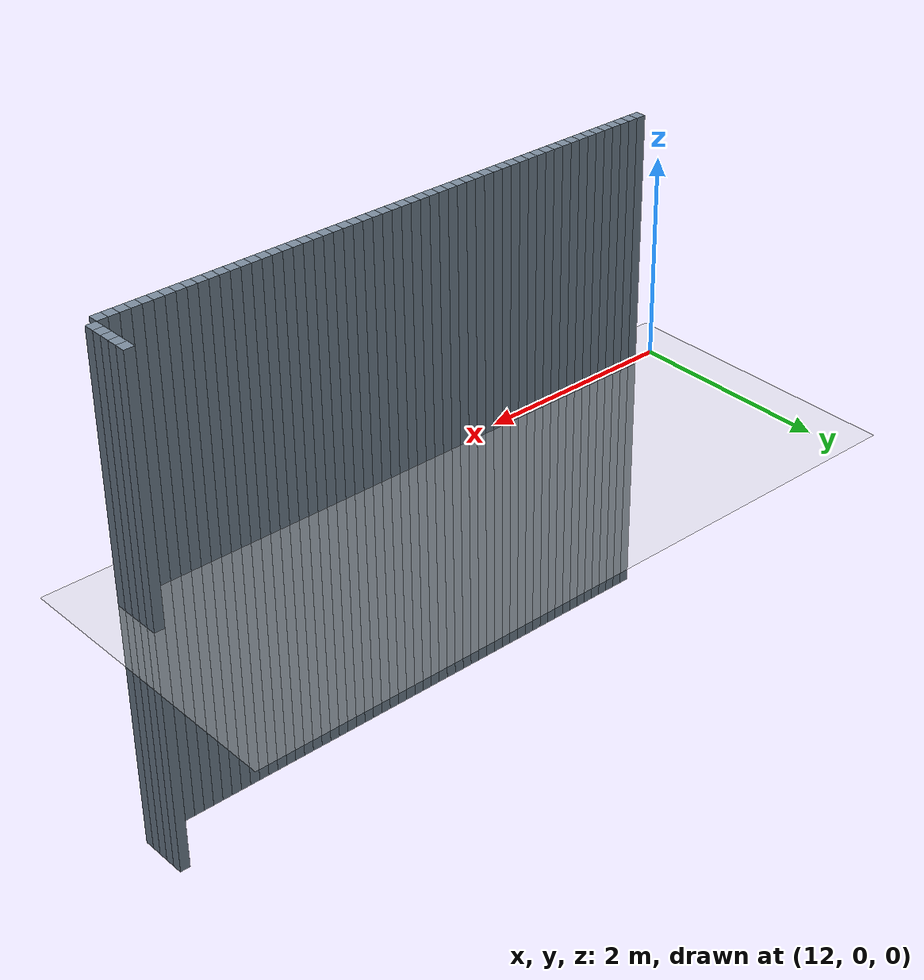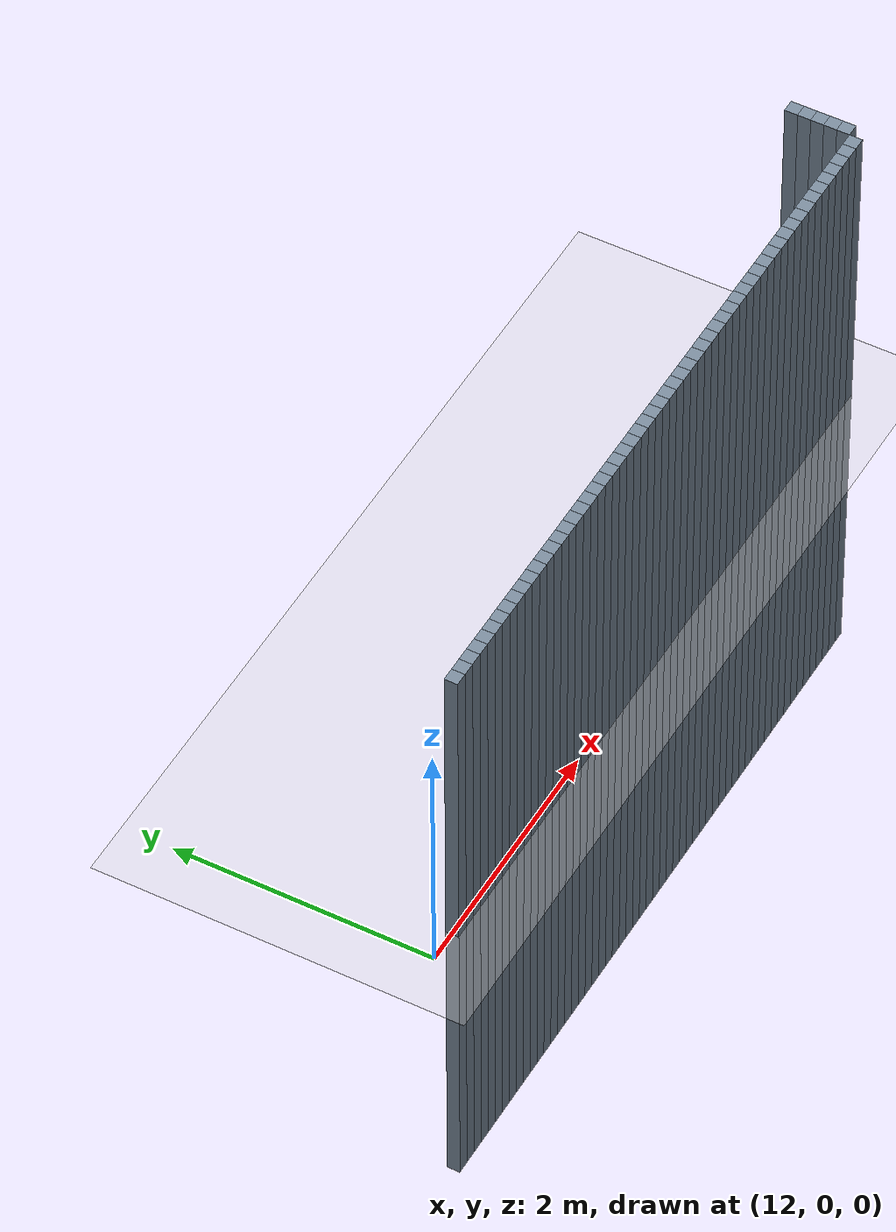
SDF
<sdf version="1.6">
 <world name="default">
  <model name="ground_plane">
   <static>1</static>
   <link name="link">
    <collision name="collision">
     <geometry><plane><normal>0 0 1</normal><size>100 100</size></plane></geometry>
     <surface><friction><ode><mu>100</mu><mu2>50</mu2></ode></friction></surface>
    </collision>
    <visual name="visual">
     <cast_shadows>0</cast_shadows>
     <geometry><plane><normal>0 0 1</normal><size>100 100</size></plane></geometry>
     <material>
      <script><uri>file://media/materials/scripts/gazebo.material</uri><name>Gazebo/Grey</name></script>
     </material>
    </visual>
   </link>
  </model>
  <model name="unit_cylinder_783">
   <static>1</static>
   <pose>12.3 0 0 0 -0 0</pose>
   <link name="link">
    <inertial>
     <mass>1</mass>
     <inertia><ixx>0.145833</ixx><ixy>0</ixy><ixz>0</ixz><iyy>0.145833</iyy><iyz>0</iyz><izz>0.125</izz></inertia>
    </inertial>
    <collision name="collision"><geometry><box><size>0.1 0.1 5</size></box></geometry></collision>
    <visual name="visual">
     <geometry><box><size>0.1 0.1 5</size></box></geometry>
     <material><ambient>0.466667 0.533333 0.6 1</ambient><diffuse>0.466667 0.533333 0.6 1</diffuse></material>
     <material>
      <script><name>Gazebo/Grey</name><uri>file://media/materials/scripts/gazebo.material</uri></script>
     </material>
    </visual>
   </link>
  </model>
  <model name="unit_cylinder_785">
   <static>1</static>
   <pose>12.4 0 0 0 -0 0</pose>
   <link name="link">
    <inertial>
     <mass>1</mass>
     <inertia><ixx>0.145833</ixx><ixy>0</ixy><ixz>0</ixz><iyy>0.145833</iyy><iyz>0</iyz><izz>0.125</izz></inertia>
    </inertial>
    <collision name="collision"><geometry><box><size>0.1 0.1 5</size></box></geometry></collision>
    <visual name="visual">
     <geometry><box><size>0.1 0.1 5</size></box></geometry>
     <material><ambient>0.466667 0.533333 0.6 1</ambient><diffuse>0.466667 0.533333 0.6 1</diffuse></material>
     <material>
      <script><name>Gazebo/Grey</name><uri>file://media/materials/scripts/gazebo.material</uri></script>
     </material>
    </visual>
   </link>
  </model>
  <model name="unit_cylinder_787">
   <static>1</static>
   <pose>12.5 0 0 0 -0 0</pose>
   <link name="link">
    <inertial>
     <mass>1</mass>
     <inertia><ixx>0.145833</ixx><ixy>0</ixy><ixz>0</ixz><iyy>0.145833</iyy><iyz>0</iyz><izz>0.125</izz></inertia>
    </inertial>
    <collision name="collision"><geometry><box><size>0.1 0.1 5</size></box></geometry></collision>
    <visual name="visual">
     <geometry><box><size>0.1 0.1 5</size></box></geometry>
     <material><ambient>0.466667 0.533333 0.6 1</ambient><diffuse>0.466667 0.533333 0.6 1</diffuse></material>
     <material>
      <script><name>Gazebo/Grey</name><uri>file://media/materials/scripts/gazebo.material</uri></script>
     </material>
    </visual>
   </link>
  </model>
  <model name="unit_cylinder_789">
   <static>1</static>
   <pose>12.6 0 0 0 -0 0</pose>
   <link name="link">
    <inertial>
     <mass>1</mass>
     <inertia><ixx>0.145833</ixx><ixy>0</ixy><ixz>0</ixz><iyy>0.145833</iyy><iyz>0</iyz><izz>0.125</izz></inertia>
    </inertial>
    <collision name="collision"><geometry><box><size>0.1 0.1 5</size></box></geometry></collision>
    <visual name="visual">
     <geometry><box><size>0.1 0.1 5</size></box></geometry>
     <material><ambient>0.466667 0.533333 0.6 1</ambient><diffuse>0.466667 0.533333 0.6 1</diffuse></material>
     <material>
      <script><name>Gazebo/Grey</name><uri>file://media/materials/scripts/gazebo.material</uri></script>
     </material>
    </visual>
   </link>
  </model>
  <model name="unit_cylinder_791">
   <static>1</static>
   <pose>12.7 0 0 0 -0 0</pose>
   <link name="link">
    <inertial>
     <mass>1</mass>
     <inertia><ixx>0.145833</ixx><ixy>0</ixy><ixz>0</ixz><iyy>0.145833</iyy><iyz>0</iyz><izz>0.125</izz></inertia>
    </inertial>
    <collision name="collision"><geometry><box><size>0.1 0.1 5</size></box></geometry></collision>
    <visual name="visual">
     <geometry><box><size>0.1 0.1 5</size></box></geometry>
     <material><ambient>0.466667 0.533333 0.6 1</ambient><diffuse>0.466667 0.533333 0.6 1</diffuse></material>
     <material>
      <script><name>Gazebo/Grey</name><uri>file://media/materials/scripts/gazebo.material</uri></script>
     </material>
    </visual>
   </link>
  </model>
  <model name="unit_cylinder_793">
   <static>1</static>
   <pose>12.8 0 0 0 -0 0</pose>
   <link name="link">
    <inertial>
     <mass>1</mass>
     <inertia><ixx>0.145833</ixx><ixy>0</ixy><ixz>0</ixz><iyy>0.145833</iyy><iyz>0</iyz><izz>0.125</izz></inertia>
    </inertial>
    <collision name="collision"><geometry><box><size>0.1 0.1 5</size></box></geometry></collision>
    <visual name="visual">
     <geometry><box><size>0.1 0.1 5</size></box></geometry>
     <material><ambient>0.466667 0.533333 0.6 1</ambient><diffuse>0.466667 0.533333 0.6 1</diffuse></material>
     <material>
      <script><name>Gazebo/Grey</name><uri>file://media/materials/scripts/gazebo.material</uri></script>
     </material>
    </visual>
   </link>
  </model>
  <model name="unit_cylinder_795">
   <static>1</static>
   <pose>12.9 0 0 0 -0 0</pose>
   <link name="link">
    <inertial>
     <mass>1</mass>
     <inertia><ixx>0.145833</ixx><ixy>0</ixy><ixz>0</ixz><iyy>0.145833</iyy><iyz>0</iyz><izz>0.125</izz></inertia>
    </inertial>
    <collision name="collision"><geometry><box><size>0.1 0.1 5</size></box></geometry></collision>
    <visual name="visual">
     <geometry><box><size>0.1 0.1 5</size></box></geometry>
     <material><ambient>0.466667 0.533333 0.6 1</ambient><diffuse>0.466667 0.533333 0.6 1</diffuse></material>
     <material>
      <script><name>Gazebo/Grey</name><uri>file://media/materials/scripts/gazebo.material</uri></script>
     </material>
    </visual>
   </link>
  </model>
  <model name="unit_cylinder_797">
   <static>1</static>
   <pose>13 0 0 0 -0 0</pose>
   <link name="link">
    <inertial>
     <mass>1</mass>
     <inertia><ixx>0.145833</ixx><ixy>0</ixy><ixz>0</ixz><iyy>0.145833</iyy><iyz>0</iyz><izz>0.125</izz></inertia>
    </inertial>
    <collision name="collision"><geometry><box><size>0.1 0.1 5</size></box></geometry></collision>
    <visual name="visual">
     <geometry><box><size>0.1 0.1 5</size></box></geometry>
     <material><ambient>0.466667 0.533333 0.6 1</ambient><diffuse>0.466667 0.533333 0.6 1</diffuse></material>
     <material>
      <script><name>Gazebo/Grey</name><uri>file://media/materials/scripts/gazebo.material</uri></script>
     </material>
    </visual>
   </link>
  </model>
  <model name="unit_cylinder_799">
   <static>1</static>
   <pose>13.1 0 0 0 -0 0</pose>
   <link name="link">
    <inertial>
     <mass>1</mass>
     <inertia><ixx>0.145833</ixx><ixy>0</ixy><ixz>0</ixz><iyy>0.145833</iyy><iyz>0</iyz><izz>0.125</izz></inertia>
    </inertial>
    <collision name="collision"><geometry><box><size>0.1 0.1 5</size></box></geometry></collision>
    <visual name="visual">
     <geometry><box><size>0.1 0.1 5</size></box></geometry>
     <material><ambient>0.466667 0.533333 0.6 1</ambient><diffuse>0.466667 0.533333 0.6 1</diffuse></material>
     <material>
      <script><name>Gazebo/Grey</name><uri>file://media/materials/scripts/gazebo.material</uri></script>
     </material>
    </visual>
   </link>
  </model>
  <model name="unit_cylinder_801">
   <static>1</static>
   <pose>13.2 0 0 0 -0 0</pose>
   <link name="link">
    <inertial>
     <mass>1</mass>
     <inertia><ixx>0.145833</ixx><ixy>0</ixy><ixz>0</ixz><iyy>0.145833</iyy><iyz>0</iyz><izz>0.125</izz></inertia>
    </inertial>
    <collision name="collision"><geometry><box><size>0.1 0.1 5</size></box></geometry></collision>
    <visual name="visual">
     <geometry><box><size>0.1 0.1 5</size></box></geometry>
     <material><ambient>0.466667 0.533333 0.6 1</ambient><diffuse>0.466667 0.533333 0.6 1</diffuse></material>
     <material>
      <script><name>Gazebo/Grey</name><uri>file://media/materials/scripts/gazebo.material</uri></script>
     </material>
    </visual>
   </link>
  </model>
  <model name="unit_cylinder_803">
   <static>1</static>
   <pose>13.3 0 0 0 -0 0</pose>
   <link name="link">
    <inertial>
     <mass>1</mass>
     <inertia><ixx>0.145833</ixx><ixy>0</ixy><ixz>0</ixz><iyy>0.145833</iyy><iyz>0</iyz><izz>0.125</izz></inertia>
    </inertial>
    <collision name="collision"><geometry><box><size>0.1 0.1 5</size></box></geometry></collision>
    <visual name="visual">
     <geometry><box><size>0.1 0.1 5</size></box></geometry>
     <material><ambient>0.466667 0.533333 0.6 1</ambient><diffuse>0.466667 0.533333 0.6 1</diffuse></material>
     <material>
      <script><name>Gazebo/Grey</name><uri>file://media/materials/scripts/gazebo.material</uri></script>
     </material>
    </visual>
   </link>
  </model>
  <model name="unit_cylinder_805">
   <static>1</static>
   <pose>13.4 0 0 0 -0 0</pose>
   <link name="link">
    <inertial>
     <mass>1</mass>
     <inertia><ixx>0.145833</ixx><ixy>0</ixy><ixz>0</ixz><iyy>0.145833</iyy><iyz>0</iyz><izz>0.125</izz></inertia>
    </inertial>
    <collision name="collision"><geometry><box><size>0.1 0.1 5</size></box></geometry></collision>
    <visual name="visual">
     <geometry><box><size>0.1 0.1 5</size></box></geometry>
     <material><ambient>0.466667 0.533333 0.6 1</ambient><diffuse>0.466667 0.533333 0.6 1</diffuse></material>
     <material>
      <script><name>Gazebo/Grey</name><uri>file://media/materials/scripts/gazebo.material</uri></script>
     </material>
    </visual>
   </link>
  </model>
  <model name="unit_cylinder_807">
   <static>1</static>
   <pose>13.5 0 0 0 -0 0</pose>
   <link name="link">
    <inertial>
     <mass>1</mass>
     <inertia><ixx>0.145833</ixx><ixy>0</ixy><ixz>0</ixz><iyy>0.145833</iyy><iyz>0</iyz><izz>0.125</izz></inertia>
    </inertial>
    <collision name="collision"><geometry><box><size>0.1 0.1 5</size></box></geometry></collision>
    <visual name="visual">
     <geometry><box><size>0.1 0.1 5</size></box></geometry>
     <material><ambient>0.466667 0.533333 0.6 1</ambient><diffuse>0.466667 0.533333 0.6 1</diffuse></material>
     <material>
      <script><name>Gazebo/Grey</name><uri>file://media/materials/scripts/gazebo.material</uri></script>
     </material>
    </visual>
   </link>
  </model>
  <model name="unit_cylinder_809">
   <static>1</static>
   <pose>13.6 0 0 0 -0 0</pose>
   <link name="link">
    <inertial>
     <mass>1</mass>
     <inertia><ixx>0.145833</ixx><ixy>0</ixy><ixz>0</ixz><iyy>0.145833</iyy><iyz>0</iyz><izz>0.125</izz></inertia>
    </inertial>
    <collision name="collision"><geometry><box><size>0.1 0.1 5</size></box></geometry></collision>
    <visual name="visual">
     <geometry><box><size>0.1 0.1 5</size></box></geometry>
     <material><ambient>0.466667 0.533333 0.6 1</ambient><diffuse>0.466667 0.533333 0.6 1</diffuse></material>
     <material>
      <script><name>Gazebo/Grey</name><uri>file://media/materials/scripts/gazebo.material</uri></script>
     </material>
    </visual>
   </link>
  </model>
  <model name="unit_cylinder_811">
   <static>1</static>
   <pose>13.7 0 0 0 -0 0</pose>
   <link name="link">
    <inertial>
     <mass>1</mass>
     <inertia><ixx>0.145833</ixx><ixy>0</ixy><ixz>0</ixz><iyy>0.145833</iyy><iyz>0</iyz><izz>0.125</izz></inertia>
    </inertial>
    <collision name="collision"><geometry><box><size>0.1 0.1 5</size></box></geometry></collision>
    <visual name="visual">
     <geometry><box><size>0.1 0.1 5</size></box></geometry>
     <material><ambient>0.466667 0.533333 0.6 1</ambient><diffuse>0.466667 0.533333 0.6 1</diffuse></material>
     <material>
      <script><name>Gazebo/Grey</name><uri>file://media/materials/scripts/gazebo.material</uri></script>
     </material>
    </visual>
   </link>
  </model>
  <model name="unit_cylinder_813">
   <static>1</static>
   <pose>13.8 0 0 0 -0 0</pose>
   <link name="link">
    <inertial>
     <mass>1</mass>
     <inertia><ixx>0.145833</ixx><ixy>0</ixy><ixz>0</ixz><iyy>0.145833</iyy><iyz>0</iyz><izz>0.125</izz></inertia>
    </inertial>
    <collision name="collision"><geometry><box><size>0.1 0.1 5</size></box></geometry></collision>
    <visual name="visual">
     <geometry><box><size>0.1 0.1 5</size></box></geometry>
     <material><ambient>0.466667 0.533333 0.6 1</ambient><diffuse>0.466667 0.533333 0.6 1</diffuse></material>
     <material>
      <script><name>Gazebo/Grey</name><uri>file://media/materials/scripts/gazebo.material</uri></script>
     </material>
    </visual>
   </link>
  </model>
  <model name="unit_cylinder_815">
   <static>1</static>
   <pose>13.9 0 0 0 -0 0</pose>
   <link name="link">
    <inertial>
     <mass>1</mass>
     <inertia><ixx>0.145833</ixx><ixy>0</ixy><ixz>0</ixz><iyy>0.145833</iyy><iyz>0</iyz><izz>0.125</izz></inertia>
    </inertial>
    <collision name="collision"><geometry><box><size>0.1 0.1 5</size></box></geometry></collision>
    <visual name="visual">
     <geometry><box><size>0.1 0.1 5</size></box></geometry>
     <material><ambient>0.466667 0.533333 0.6 1</ambient><diffuse>0.466667 0.533333 0.6 1</diffuse></material>
     <material>
      <script><name>Gazebo/Grey</name><uri>file://media/materials/scripts/gazebo.material</uri></script>
     </material>
    </visual>
   </link>
  </model>
  <model name="unit_cylinder_817">
   <static>1</static>
   <pose>14 0 0 0 -0 0</pose>
   <link name="link">
    <inertial>
     <mass>1</mass>
     <inertia><ixx>0.145833</ixx><ixy>0</ixy><ixz>0</ixz><iyy>0.145833</iyy><iyz>0</iyz><izz>0.125</izz></inertia>
    </inertial>
    <collision name="collision"><geometry><box><size>0.1 0.1 5</size></box></geometry></collision>
    <visual name="visual">
     <geometry><box><size>0.1 0.1 5</size></box></geometry>
     <material><ambient>0.466667 0.533333 0.6 1</ambient><diffuse>0.466667 0.533333 0.6 1</diffuse></material>
     <material>
      <script><name>Gazebo/Grey</name><uri>file://media/materials/scripts/gazebo.material</uri></script>
     </material>
    </visual>
   </link>
  </model>
  <model name="unit_cylinder_819">
   <static>1</static>
   <pose>14.1 0 0 0 -0 0</pose>
   <link name="link">
    <inertial>
     <mass>1</mass>
     <inertia><ixx>0.145833</ixx><ixy>0</ixy><ixz>0</ixz><iyy>0.145833</iyy><iyz>0</iyz><izz>0.125</izz></inertia>
    </inertial>
    <collision name="collision"><geometry><box><size>0.1 0.1 5</size></box></geometry></collision>
    <visual name="visual">
     <geometry><box><size>0.1 0.1 5</size></box></geometry>
     <material><ambient>0.466667 0.533333 0.6 1</ambient><diffuse>0.466667 0.533333 0.6 1</diffuse></material>
     <material>
      <script><name>Gazebo/Grey</name><uri>file://media/materials/scripts/gazebo.material</uri></script>
     </material>
    </visual>
   </link>
  </model>
  <model name="unit_cylinder_821">
   <static>1</static>
   <pose>14.2 0 0 0 -0 0</pose>
   <link name="link">
    <inertial>
     <mass>1</mass>
     <inertia><ixx>0.145833</ixx><ixy>0</ixy><ixz>0</ixz><iyy>0.145833</iyy><iyz>0</iyz><izz>0.125</izz></inertia>
    </inertial>
    <collision name="collision"><geometry><box><size>0.1 0.1 5</size></box></geometry></collision>
    <visual name="visual">
     <geometry><box><size>0.1 0.1 5</size></box></geometry>
     <material><ambient>0.466667 0.533333 0.6 1</ambient><diffuse>0.466667 0.533333 0.6 1</diffuse></material>
     <material>
      <script><name>Gazebo/Grey</name><uri>file://media/materials/scripts/gazebo.material</uri></script>
     </material>
    </visual>
   </link>
  </model>
  <model name="unit_cylinder_823">
   <static>1</static>
   <pose>14.3 0 0 0 -0 0</pose>
   <link name="link">
    <inertial>
     <mass>1</mass>
     <inertia><ixx>0.145833</ixx><ixy>0</ixy><ixz>0</ixz><iyy>0.145833</iyy><iyz>0</iyz><izz>0.125</izz></inertia>
    </inertial>
    <collision name="collision"><geometry><box><size>0.1 0.1 5</size></box></geometry></collision>
    <visual name="visual">
     <geometry><box><size>0.1 0.1 5</size></box></geometry>
     <material><ambient>0.466667 0.533333 0.6 1</ambient><diffuse>0.466667 0.533333 0.6 1</diffuse></material>
     <material>
      <script><name>Gazebo/Grey</name><uri>file://media/materials/scripts/gazebo.material</uri></script>
     </material>
    </visual>
   </link>
  </model>
  <model name="unit_cylinder_825">
   <static>1</static>
   <pose>14.4 0 0 0 -0 0</pose>
   <link name="link">
    <inertial>
     <mass>1</mass>
     <inertia><ixx>0.145833</ixx><ixy>0</ixy><ixz>0</ixz><iyy>0.145833</iyy><iyz>0</iyz><izz>0.125</izz></inertia>
    </inertial>
    <collision name="collision"><geometry><box><size>0.1 0.1 5</size></box></geometry></collision>
    <visual name="visual">
     <geometry><box><size>0.1 0.1 5</size></box></geometry>
     <material><ambient>0.466667 0.533333 0.6 1</ambient><diffuse>0.466667 0.533333 0.6 1</diffuse></material>
     <material>
      <script><name>Gazebo/Grey</name><uri>file://media/materials/scripts/gazebo.material</uri></script>
     </material>
    </visual>
   </link>
  </model>
  <model name="unit_cylinder_827">
   <static>1</static>
   <pose>14.5 0 0 0 -0 0</pose>
   <link name="link">
    <inertial>
     <mass>1</mass>
     <inertia><ixx>0.145833</ixx><ixy>0</ixy><ixz>0</ixz><iyy>0.145833</iyy><iyz>0</iyz><izz>0.125</izz></inertia>
    </inertial>
    <collision name="collision"><geometry><box><size>0.1 0.1 5</size></box></geometry></collision>
    <visual name="visual">
     <geometry><box><size>0.1 0.1 5</size></box></geometry>
     <material><ambient>0.466667 0.533333 0.6 1</ambient><diffuse>0.466667 0.533333 0.6 1</diffuse></material>
     <material>
      <script><name>Gazebo/Grey</name><uri>file://media/materials/scripts/gazebo.material</uri></script>
     </material>
    </visual>
   </link>
  </model>
  <model name="unit_cylinder_829">
   <static>1</static>
   <pose>14.6 0 0 0 -0 0</pose>
   <link name="link">
    <inertial>
     <mass>1</mass>
     <inertia><ixx>0.145833</ixx><ixy>0</ixy><ixz>0</ixz><iyy>0.145833</iyy><iyz>0</iyz><izz>0.125</izz></inertia>
    </inertial>
    <collision name="collision"><geometry><box><size>0.1 0.1 5</size></box></geometry></collision>
    <visual name="visual">
     <geometry><box><size>0.1 0.1 5</size></box></geometry>
     <material><ambient>0.466667 0.533333 0.6 1</ambient><diffuse>0.466667 0.533333 0.6 1</diffuse></material>
     <material>
      <script><name>Gazebo/Grey</name><uri>file://media/materials/scripts/gazebo.material</uri></script>
     </material>
    </visual>
   </link>
  </model>
  <model name="unit_cylinder_831">
   <static>1</static>
   <pose>14.7 0 0 0 -0 0</pose>
   <link name="link">
    <inertial>
     <mass>1</mass>
     <inertia><ixx>0.145833</ixx><ixy>0</ixy><ixz>0</ixz><iyy>0.145833</iyy><iyz>0</iyz><izz>0.125</izz></inertia>
    </inertial>
    <collision name="collision"><geometry><box><size>0.1 0.1 5</size></box></geometry></collision>
    <visual name="visual">
     <geometry><box><size>0.1 0.1 5</size></box></geometry>
     <material><ambient>0.466667 0.533333 0.6 1</ambient><diffuse>0.466667 0.533333 0.6 1</diffuse></material>
     <material>
      <script><name>Gazebo/Grey</name><uri>file://media/materials/scripts/gazebo.material</uri></script>
     </material>
    </visual>
   </link>
  </model>
  <model name="unit_cylinder_833">
   <static>1</static>
   <pose>14.8 0 0 0 -0 0</pose>
   <link name="link">
    <inertial>
     <mass>1</mass>
     <inertia><ixx>0.145833</ixx><ixy>0</ixy><ixz>0</ixz><iyy>0.145833</iyy><iyz>0</iyz><izz>0.125</izz></inertia>
    </inertial>
    <collision name="collision"><geometry><box><size>0.1 0.1 5</size></box></geometry></collision>
    <visual name="visual">
     <geometry><box><size>0.1 0.1 5</size></box></geometry>
     <material><ambient>0.466667 0.533333 0.6 1</ambient><diffuse>0.466667 0.533333 0.6 1</diffuse></material>
     <material>
      <script><name>Gazebo/Grey</name><uri>file://media/materials/scripts/gazebo.material</uri></script>
     </material>
    </visual>
   </link>
  </model>
  <model name="unit_cylinder_835">
   <static>1</static>
   <pose>14.9 0 0 0 -0 0</pose>
   <link name="link">
    <inertial>
     <mass>1</mass>
     <inertia><ixx>0.145833</ixx><ixy>0</ixy><ixz>0</ixz><iyy>0.145833</iyy><iyz>0</iyz><izz>0.125</izz></inertia>
    </inertial>
    <collision name="collision"><geometry><box><size>0.1 0.1 5</size></box></geometry></collision>
    <visual name="visual">
     <geometry><box><size>0.1 0.1 5</size></box></geometry>
     <material><ambient>0.466667 0.533333 0.6 1</ambient><diffuse>0.466667 0.533333 0.6 1</diffuse></material>
     <material>
      <script><name>Gazebo/Grey</name><uri>file://media/materials/scripts/gazebo.material</uri></script>
     </material>
    </visual>
   </link>
  </model>
  <model name="unit_cylinder_837">
   <static>1</static>
   <pose>15 0 0 0 -0 0</pose>
   <link name="link">
    <inertial>
     <mass>1</mass>
     <inertia><ixx>0.145833</ixx><ixy>0</ixy><ixz>0</ixz><iyy>0.145833</iyy><iyz>0</iyz><izz>0.125</izz></inertia>
    </inertial>
    <collision name="collision"><geometry><box><size>0.1 0.1 5</size></box></geometry></collision>
    <visual name="visual">
     <geometry><box><size>0.1 0.1 5</size></box></geometry>
     <material><ambient>0.466667 0.533333 0.6 1</ambient><diffuse>0.466667 0.533333 0.6 1</diffuse></material>
     <material>
      <script><name>Gazebo/Grey</name><uri>file://media/materials/scripts/gazebo.material</uri></script>
     </material>
    </visual>
   </link>
  </model>
  <model name="unit_cylinder_839">
   <static>1</static>
   <pose>15.1 0 0 0 -0 0</pose>
   <link name="link">
    <inertial>
     <mass>1</mass>
     <inertia><ixx>0.145833</ixx><ixy>0</ixy><ixz>0</ixz><iyy>0.145833</iyy><iyz>0</iyz><izz>0.125</izz></inertia>
    </inertial>
    <collision name="collision"><geometry><box><size>0.1 0.1 5</size></box></geometry></collision>
    <visual name="visual">
     <geometry><box><size>0.1 0.1 5</size></box></geometry>
     <material><ambient>0.466667 0.533333 0.6 1</ambient><diffuse>0.466667 0.533333 0.6 1</diffuse></material>
     <material>
      <script><name>Gazebo/Grey</name><uri>file://media/materials/scripts/gazebo.material</uri></script>
     </material>
    </visual>
   </link>
  </model>
  <model name="unit_cylinder_841">
   <static>1</static>
   <pose>15.2 0 0 0 -0 0</pose>
   <link name="link">
    <inertial>
     <mass>1</mass>
     <inertia><ixx>0.145833</ixx><ixy>0</ixy><ixz>0</ixz><iyy>0.145833</iyy><iyz>0</iyz><izz>0.125</izz></inertia>
    </inertial>
    <collision name="collision"><geometry><box><size>0.1 0.1 5</size></box></geometry></collision>
    <visual name="visual">
     <geometry><box><size>0.1 0.1 5</size></box></geometry>
     <material><ambient>0.466667 0.533333 0.6 1</ambient><diffuse>0.466667 0.533333 0.6 1</diffuse></material>
     <material>
      <script><name>Gazebo/Grey</name><uri>file://media/materials/scripts/gazebo.material</uri></script>
     </material>
    </visual>
   </link>
  </model>
  <model name="unit_cylinder_843">
   <static>1</static>
   <pose>15.3 0 0 0 -0 0</pose>
   <link name="link">
    <inertial>
     <mass>1</mass>
     <inertia><ixx>0.145833</ixx><ixy>0</ixy><ixz>0</ixz><iyy>0.145833</iyy><iyz>0</iyz><izz>0.125</izz></inertia>
    </inertial>
    <collision name="collision"><geometry><box><size>0.1 0.1 5</size></box></geometry></collision>
    <visual name="visual">
     <geometry><box><size>0.1 0.1 5</size></box></geometry>
     <material><ambient>0.466667 0.533333 0.6 1</ambient><diffuse>0.466667 0.533333 0.6 1</diffuse></material>
     <material>
      <script><name>Gazebo/Grey</name><uri>file://media/materials/scripts/gazebo.material</uri></script>
     </material>
    </visual>
   </link>
  </model>
  <model name="unit_cylinder_845">
   <static>1</static>
   <pose>15.4 0 0 0 -0 0</pose>
   <link name="link">
    <inertial>
     <mass>1</mass>
     <inertia><ixx>0.145833</ixx><ixy>0</ixy><ixz>0</ixz><iyy>0.145833</iyy><iyz>0</iyz><izz>0.125</izz></inertia>
    </inertial>
    <collision name="collision"><geometry><box><size>0.1 0.1 5</size></box></geometry></collision>
    <visual name="visual">
     <geometry><box><size>0.1 0.1 5</size></box></geometry>
     <material><ambient>0.466667 0.533333 0.6 1</ambient><diffuse>0.466667 0.533333 0.6 1</diffuse></material>
     <material>
      <script><name>Gazebo/Grey</name><uri>file://media/materials/scripts/gazebo.material</uri></script>
     </material>
    </visual>
   </link>
  </model>
  <model name="unit_cylinder_847">
   <static>1</static>
   <pose>15.5 0 0 0 -0 0</pose>
   <link name="link">
    <inertial>
     <mass>1</mass>
     <inertia><ixx>0.145833</ixx><ixy>0</ixy><ixz>0</ixz><iyy>0.145833</iyy><iyz>0</iyz><izz>0.125</izz></inertia>
    </inertial>
    <collision name="collision"><geometry><box><size>0.1 0.1 5</size></box></geometry></collision>
    <visual name="visual">
     <geometry><box><size>0.1 0.1 5</size></box></geometry>
     <material><ambient>0.466667 0.533333 0.6 1</ambient><diffuse>0.466667 0.533333 0.6 1</diffuse></material>
     <material>
      <script><name>Gazebo/Grey</name><uri>file://media/materials/scripts/gazebo.material</uri></script>
     </material>
    </visual>
   </link>
  </model>
  <model name="unit_cylinder_849">
   <static>1</static>
   <pose>15.6 0 0 0 -0 0</pose>
   <link name="link">
    <inertial>
     <mass>1</mass>
     <inertia><ixx>0.145833</ixx><ixy>0</ixy><ixz>0</ixz><iyy>0.145833</iyy><iyz>0</iyz><izz>0.125</izz></inertia>
    </inertial>
    <collision name="collision"><geometry><box><size>0.1 0.1 5</size></box></geometry></collision>
    <visual name="visual">
     <geometry><box><size>0.1 0.1 5</size></box></geometry>
     <material><ambient>0.466667 0.533333 0.6 1</ambient><diffuse>0.466667 0.533333 0.6 1</diffuse></material>
     <material>
      <script><name>Gazebo/Grey</name><uri>file://media/materials/scripts/gazebo.material</uri></script>
     </material>
    </visual>
   </link>
  </model>
  <model name="unit_cylinder_851">
   <static>1</static>
   <pose>15.7 0 0 0 -0 0</pose>
   <link name="link">
    <inertial>
     <mass>1</mass>
     <inertia><ixx>0.145833</ixx><ixy>0</ixy><ixz>0</ixz><iyy>0.145833</iyy><iyz>0</iyz><izz>0.125</izz></inertia>
    </inertial>
    <collision name="collision"><geometry><box><size>0.1 0.1 5</size></box></geometry></collision>
    <visual name="visual">
     <geometry><box><size>0.1 0.1 5</size></box></geometry>
     <material><ambient>0.466667 0.533333 0.6 1</ambient><diffuse>0.466667 0.533333 0.6 1</diffuse></material>
     <material>
      <script><name>Gazebo/Grey</name><uri>file://media/materials/scripts/gazebo.material</uri></script>
     </material>
    </visual>
   </link>
  </model>
  <model name="unit_cylinder_853">
   <static>1</static>
   <pose>15.8 0 0 0 -0 0</pose>
   <link name="link">
    <inertial>
     <mass>1</mass>
     <inertia><ixx>0.145833</ixx><ixy>0</ixy><ixz>0</ixz><iyy>0.145833</iyy><iyz>0</iyz><izz>0.125</izz></inertia>
    </inertial>
    <collision name="collision"><geometry><box><size>0.1 0.1 5</size></box></geometry></collision>
    <visual name="visual">
     <geometry><box><size>0.1 0.1 5</size></box></geometry>
     <material><ambient>0.466667 0.533333 0.6 1</ambient><diffuse>0.466667 0.533333 0.6 1</diffuse></material>
     <material>
      <script><name>Gazebo/Grey</name><uri>file://media/materials/scripts/gazebo.material</uri></script>
     </material>
    </visual>
   </link>
  </model>
  <model name="unit_cylinder_855">
   <static>1</static>
   <pose>15.9 0 0 0 -0 0</pose>
   <link name="link">
    <inertial>
     <mass>1</mass>
     <inertia><ixx>0.145833</ixx><ixy>0</ixy><ixz>0</ixz><iyy>0.145833</iyy><iyz>0</iyz><izz>0.125</izz></inertia>
    </inertial>
    <collision name="collision"><geometry><box><size>0.1 0.1 5</size></box></geometry></collision>
    <visual name="visual">
     <geometry><box><size>0.1 0.1 5</size></box></geometry>
     <material><ambient>0.466667 0.533333 0.6 1</ambient><diffuse>0.466667 0.533333 0.6 1</diffuse></material>
     <material>
      <script><name>Gazebo/Grey</name><uri>file://media/materials/scripts/gazebo.material</uri></script>
     </material>
    </visual>
   </link>
  </model>
  <model name="unit_cylinder_857">
   <static>1</static>
   <pose>16 0 0 0 -0 0</pose>
   <link name="link">
    <inertial>
     <mass>1</mass>
     <inertia><ixx>0.145833</ixx><ixy>0</ixy><ixz>0</ixz><iyy>0.145833</iyy><iyz>0</iyz><izz>0.125</izz></inertia>
    </inertial>
    <collision name="collision"><geometry><box><size>0.1 0.1 5</size></box></geometry></collision>
    <visual name="visual">
     <geometry><box><size>0.1 0.1 5</size></box></geometry>
     <material><ambient>0.466667 0.533333 0.6 1</ambient><diffuse>0.466667 0.533333 0.6 1</diffuse></material>
     <material>
      <script><name>Gazebo/Grey</name><uri>file://media/materials/scripts/gazebo.material</uri></script>
     </material>
    </visual>
   </link>
  </model>
  <model name="unit_cylinder_859">
   <static>1</static>
   <pose>16.1 0 0 0 -0 0</pose>
   <link name="link">
    <inertial>
     <mass>1</mass>
     <inertia><ixx>0.145833</ixx><ixy>0</ixy><ixz>0</ixz><iyy>0.145833</iyy><iyz>0</iyz><izz>0.125</izz></inertia>
    </inertial>
    <collision name="collision"><geometry><box><size>0.1 0.1 5</size></box></geometry></collision>
    <visual name="visual">
     <geometry><box><size>0.1 0.1 5</size></box></geometry>
     <material><ambient>0.466667 0.533333 0.6 1</ambient><diffuse>0.466667 0.533333 0.6 1</diffuse></material>
     <material>
      <script><name>Gazebo/Grey</name><uri>file://media/materials/scripts/gazebo.material</uri></script>
     </material>
    </visual>
   </link>
  </model>
  <model name="unit_cylinder_861">
   <static>1</static>
   <pose>16.2 0 0 0 -0 0</pose>
   <link name="link">
    <inertial>
     <mass>1</mass>
     <inertia><ixx>0.145833</ixx><ixy>0</ixy><ixz>0</ixz><iyy>0.145833</iyy><iyz>0</iyz><izz>0.125</izz></inertia>
    </inertial>
    <collision name="collision"><geometry><box><size>0.1 0.1 5</size></box></geometry></collision>
    <visual name="visual">
     <geometry><box><size>0.1 0.1 5</size></box></geometry>
     <material><ambient>0.466667 0.533333 0.6 1</ambient><diffuse>0.466667 0.533333 0.6 1</diffuse></material>
     <material>
      <script><name>Gazebo/Grey</name><uri>file://media/materials/scripts/gazebo.material</uri></script>
     </material>
    </visual>
   </link>
  </model>
  <model name="unit_cylinder_863">
   <static>1</static>
   <pose>16.3 0 0 0 -0 0</pose>
   <link name="link">
    <inertial>
     <mass>1</mass>
     <inertia><ixx>0.145833</ixx><ixy>0</ixy><ixz>0</ixz><iyy>0.145833</iyy><iyz>0</iyz><izz>0.125</izz></inertia>
    </inertial>
    <collision name="collision"><geometry><box><size>0.1 0.1 5</size></box></geometry></collision>
    <visual name="visual">
     <geometry><box><size>0.1 0.1 5</size></box></geometry>
     <material><ambient>0.466667 0.533333 0.6 1</ambient><diffuse>0.466667 0.533333 0.6 1</diffuse></material>
     <material>
      <script><name>Gazebo/Grey</name><uri>file://media/materials/scripts/gazebo.material</uri></script>
     </material>
    </visual>
   </link>
  </model>
  <model name="unit_cylinder_865">
   <static>1</static>
   <pose>16.4 0 0 0 -0 0</pose>
   <link name="link">
    <inertial>
     <mass>1</mass>
     <inertia><ixx>0.145833</ixx><ixy>0</ixy><ixz>0</ixz><iyy>0.145833</iyy><iyz>0</iyz><izz>0.125</izz></inertia>
    </inertial>
    <collision name="collision"><geometry><box><size>0.1 0.1 5</size></box></geometry></collision>
    <visual name="visual">
     <geometry><box><size>0.1 0.1 5</size></box></geometry>
     <material><ambient>0.466667 0.533333 0.6 1</ambient><diffuse>0.466667 0.533333 0.6 1</diffuse></material>
     <material>
      <script><name>Gazebo/Grey</name><uri>file://media/materials/scripts/gazebo.material</uri></script>
     </material>
    </visual>
   </link>
  </model>
  <model name="unit_cylinder_867">
   <static>1</static>
   <pose>16.5 0 0 0 -0 0</pose>
   <link name="link">
    <inertial>
     <mass>1</mass>
     <inertia><ixx>0.145833</ixx><ixy>0</ixy><ixz>0</ixz><iyy>0.145833</iyy><iyz>0</iyz><izz>0.125</izz></inertia>
    </inertial>
    <collision name="collision"><geometry><box><size>0.1 0.1 5</size></box></geometry></collision>
    <visual name="visual">
     <geometry><box><size>0.1 0.1 5</size></box></geometry>
     <material><ambient>0.466667 0.533333 0.6 1</ambient><diffuse>0.466667 0.533333 0.6 1</diffuse></material>
     <material>
      <script><name>Gazebo/Grey</name><uri>file://media/materials/scripts/gazebo.material</uri></script>
     </material>
    </visual>
   </link>
  </model>
  <model name="unit_cylinder_869">
   <static>1</static>
   <pose>16.6 0 0 0 -0 0</pose>
   <link name="link">
    <inertial>
     <mass>1</mass>
     <inertia><ixx>0.145833</ixx><ixy>0</ixy><ixz>0</ixz><iyy>0.145833</iyy><iyz>0</iyz><izz>0.125</izz></inertia>
    </inertial>
    <collision name="collision"><geometry><box><size>0.1 0.1 5</size></box></geometry></collision>
    <visual name="visual">
     <geometry><box><size>0.1 0.1 5</size></box></geometry>
     <material><ambient>0.466667 0.533333 0.6 1</ambient><diffuse>0.466667 0.533333 0.6 1</diffuse></material>
     <material>
      <script><name>Gazebo/Grey</name><uri>file://media/materials/scripts/gazebo.material</uri></script>
     </material>
    </visual>
   </link>
  </model>
  <model name="unit_cylinder_871">
   <static>1</static>
   <pose>16.7 0 0 0 -0 0</pose>
   <link name="link">
    <inertial>
     <mass>1</mass>
     <inertia><ixx>0.145833</ixx><ixy>0</ixy><ixz>0</ixz><iyy>0.145833</iyy><iyz>0</iyz><izz>0.125</izz></inertia>
    </inertial>
    <collision name="collision"><geometry><box><size>0.1 0.1 5</size></box></geometry></collision>
    <visual name="visual">
     <geometry><box><size>0.1 0.1 5</size></box></geometry>
     <material><ambient>0.466667 0.533333 0.6 1</ambient><diffuse>0.466667 0.533333 0.6 1</diffuse></material>
     <material>
      <script><name>Gazebo/Grey</name><uri>file://media/materials/scripts/gazebo.material</uri></script>
     </material>
    </visual>
   </link>
  </model>
  <model name="unit_cylinder_873">
   <static>1</static>
   <pose>16.8 0 0 0 -0 0</pose>
   <link name="link">
    <inertial>
     <mass>1</mass>
     <inertia><ixx>0.145833</ixx><ixy>0</ixy><ixz>0</ixz><iyy>0.145833</iyy><iyz>0</iyz><izz>0.125</izz></inertia>
    </inertial>
    <collision name="collision"><geometry><box><size>0.1 0.1 5</size></box></geometry></collision>
    <visual name="visual">
     <geometry><box><size>0.1 0.1 5</size></box></geometry>
     <material><ambient>0.466667 0.533333 0.6 1</ambient><diffuse>0.466667 0.533333 0.6 1</diffuse></material>
     <material>
      <script><name>Gazebo/Grey</name><uri>file://media/materials/scripts/gazebo.material</uri></script>
     </material>
    </visual>
   </link>
  </model>
  <model name="unit_cylinder_875">
   <static>1</static>
   <pose>16.9 0 0 0 -0 0</pose>
   <link name="link">
    <inertial>
     <mass>1</mass>
     <inertia><ixx>0.145833</ixx><ixy>0</ixy><ixz>0</ixz><iyy>0.145833</iyy><iyz>0</iyz><izz>0.125</izz></inertia>
    </inertial>
    <collision name="collision"><geometry><box><size>0.1 0.1 5</size></box></geometry></collision>
    <visual name="visual">
     <geometry><box><size>0.1 0.1 5</size></box></geometry>
     <material><ambient>0.466667 0.533333 0.6 1</ambient><diffuse>0.466667 0.533333 0.6 1</diffuse></material>
     <material>
      <script><name>Gazebo/Grey</name><uri>file://media/materials/scripts/gazebo.material</uri></script>
     </material>
    </visual>
   </link>
  </model>
  <model name="unit_cylinder_877">
   <static>1</static>
   <pose>17 0 0 0 -0 0</pose>
   <link name="link">
    <inertial>
     <mass>1</mass>
     <inertia><ixx>0.145833</ixx><ixy>0</ixy><ixz>0</ixz><iyy>0.145833</iyy><iyz>0</iyz><izz>0.125</izz></inertia>
    </inertial>
    <collision name="collision"><geometry><box><size>0.1 0.1 5</size></box></geometry></collision>
    <visual name="visual">
     <geometry><box><size>0.1 0.1 5</size></box></geometry>
     <material><ambient>0.466667 0.533333 0.6 1</ambient><diffuse>0.466667 0.533333 0.6 1</diffuse></material>
     <material>
      <script><name>Gazebo/Grey</name><uri>file://media/materials/scripts/gazebo.material</uri></script>
     </material>
    </visual>
   </link>
  </model>
  <model name="unit_cylinder_879">
   <static>1</static>
   <pose>17.1 0 0 0 -0 0</pose>
   <link name="link">
    <inertial>
     <mass>1</mass>
     <inertia><ixx>0.145833</ixx><ixy>0</ixy><ixz>0</ixz><iyy>0.145833</iyy><iyz>0</iyz><izz>0.125</izz></inertia>
    </inertial>
    <collision name="collision"><geometry><box><size>0.1 0.1 5</size></box></geometry></collision>
    <visual name="visual">
     <geometry><box><size>0.1 0.1 5</size></box></geometry>
     <material><ambient>0.466667 0.533333 0.6 1</ambient><diffuse>0.466667 0.533333 0.6 1</diffuse></material>
     <material>
      <script><name>Gazebo/Grey</name><uri>file://media/materials/scripts/gazebo.material</uri></script>
     </material>
    </visual>
   </link>
  </model>
  <model name="unit_cylinder_881">
   <static>1</static>
   <pose>17.2 0 0 0 -0 0</pose>
   <link name="link">
    <inertial>
     <mass>1</mass>
     <inertia><ixx>0.145833</ixx><ixy>0</ixy><ixz>0</ixz><iyy>0.145833</iyy><iyz>0</iyz><izz>0.125</izz></inertia>
    </inertial>
    <collision name="collision"><geometry><box><size>0.1 0.1 5</size></box></geometry></collision>
    <visual name="visual">
     <geometry><box><size>0.1 0.1 5</size></box></geometry>
     <material><ambient>0.466667 0.533333 0.6 1</ambient><diffuse>0.466667 0.533333 0.6 1</diffuse></material>
     <material>
      <script><name>Gazebo/Grey</name><uri>file://media/materials/scripts/gazebo.material</uri></script>
     </material>
    </visual>
   </link>
  </model>
  <model name="unit_cylinder_883">
   <static>1</static>
   <pose>17.3 0 0 0 -0 0</pose>
   <link name="link">
    <inertial>
     <mass>1</mass>
     <inertia><ixx>0.145833</ixx><ixy>0</ixy><ixz>0</ixz><iyy>0.145833</iyy><iyz>0</iyz><izz>0.125</izz></inertia>
    </inertial>
    <collision name="collision"><geometry><box><size>0.1 0.1 5</size></box></geometry></collision>
    <visual name="visual">
     <geometry><box><size>0.1 0.1 5</size></box></geometry>
     <material><ambient>0.466667 0.533333 0.6 1</ambient><diffuse>0.466667 0.533333 0.6 1</diffuse></material>
     <material>
      <script><name>Gazebo/Grey</name><uri>file://media/materials/scripts/gazebo.material</uri></script>
     </material>
    </visual>
   </link>
  </model>
  <model name="unit_cylinder_885">
   <static>1</static>
   <pose>17.4 0 0 0 -0 0</pose>
   <link name="link">
    <inertial>
     <mass>1</mass>
     <inertia><ixx>0.145833</ixx><ixy>0</ixy><ixz>0</ixz><iyy>0.145833</iyy><iyz>0</iyz><izz>0.125</izz></inertia>
    </inertial>
    <collision name="collision"><geometry><box><size>0.1 0.1 5</size></box></geometry></collision>
    <visual name="visual">
     <geometry><box><size>0.1 0.1 5</size></box></geometry>
     <material><ambient>0.466667 0.533333 0.6 1</ambient><diffuse>0.466667 0.533333 0.6 1</diffuse></material>
     <material>
      <script><name>Gazebo/Grey</name><uri>file://media/materials/scripts/gazebo.material</uri></script>
     </material>
    </visual>
   </link>
  </model>
  <model name="unit_cylinder_887">
   <static>1</static>
   <pose>17.5 0 0 0 -0 0</pose>
   <link name="link">
    <inertial>
     <mass>1</mass>
     <inertia><ixx>0.145833</ixx><ixy>0</ixy><ixz>0</ixz><iyy>0.145833</iyy><iyz>0</iyz><izz>0.125</izz></inertia>
    </inertial>
    <collision name="collision"><geometry><box><size>0.1 0.1 5</size></box></geometry></collision>
    <visual name="visual">
     <geometry><box><size>0.1 0.1 5</size></box></geometry>
     <material><ambient>0.466667 0.533333 0.6 1</ambient><diffuse>0.466667 0.533333 0.6 1</diffuse></material>
     <material>
      <script><name>Gazebo/Grey</name><uri>file://media/materials/scripts/gazebo.material</uri></script>
     </material>
    </visual>
   </link>
  </model>
  <model name="unit_cylinder_889">
   <static>1</static>
   <pose>17.6 0 0 0 -0 0</pose>
   <link name="link">
    <inertial>
     <mass>1</mass>
     <inertia><ixx>0.145833</ixx><ixy>0</ixy><ixz>0</ixz><iyy>0.145833</iyy><iyz>0</iyz><izz>0.125</izz></inertia>
    </inertial>
    <collision name="collision"><geometry><box><size>0.1 0.1 5</size></box></geometry></collision>
    <visual name="visual">
     <geometry><box><size>0.1 0.1 5</size></box></geometry>
     <material><ambient>0.466667 0.533333 0.6 1</ambient><diffuse>0.466667 0.533333 0.6 1</diffuse></material>
     <material>
      <script><name>Gazebo/Grey</name><uri>file://media/materials/scripts/gazebo.material</uri></script>
     </material>
    </visual>
   </link>
  </model>
  <model name="unit_cylinder_891">
   <static>1</static>
   <pose>17.7 0 0 0 -0 0</pose>
   <link name="link">
    <inertial>
     <mass>1</mass>
     <inertia><ixx>0.145833</ixx><ixy>0</ixy><ixz>0</ixz><iyy>0.145833</iyy><iyz>0</iyz><izz>0.125</izz></inertia>
    </inertial>
    <collision name="collision"><geometry><box><size>0.1 0.1 5</size></box></geometry></collision>
    <visual name="visual">
     <geometry><box><size>0.1 0.1 5</size></box></geometry>
     <material><ambient>0.466667 0.533333 0.6 1</ambient><diffuse>0.466667 0.533333 0.6 1</diffuse></material>
     <material>
      <script><name>Gazebo/Grey</name><uri>file://media/materials/scripts/gazebo.material</uri></script>
     </material>
    </visual>
   </link>
  </model>
  <model name="unit_cylinder_893">
   <static>1</static>
   <pose>17.8 0 0 0 -0 0</pose>
   <link name="link">
    <inertial>
     <mass>1</mass>
     <inertia><ixx>0.145833</ixx><ixy>0</ixy><ixz>0</ixz><iyy>0.145833</iyy><iyz>0</iyz><izz>0.125</izz></inertia>
    </inertial>
    <collision name="collision"><geometry><box><size>0.1 0.1 5</size></box></geometry></collision>
    <visual name="visual">
     <geometry><box><size>0.1 0.1 5</size></box></geometry>
     <material><ambient>0.466667 0.533333 0.6 1</ambient><diffuse>0.466667 0.533333 0.6 1</diffuse></material>
     <material>
      <script><name>Gazebo/Grey</name><uri>file://media/materials/scripts/gazebo.material</uri></script>
     </material>
    </visual>
   </link>
  </model>
  <model name="unit_cylinder_895">
   <static>1</static>
   <pose>17.9 0 0 0 -0 0</pose>
   <link name="link">
    <inertial>
     <mass>1</mass>
     <inertia><ixx>0.145833</ixx><ixy>0</ixy><ixz>0</ixz><iyy>0.145833</iyy><iyz>0</iyz><izz>0.125</izz></inertia>
    </inertial>
    <collision name="collision"><geometry><box><size>0.1 0.1 5</size></box></geometry></collision>
    <visual name="visual">
     <geometry><box><size>0.1 0.1 5</size></box></geometry>
     <material><ambient>0.466667 0.533333 0.6 1</ambient><diffuse>0.466667 0.533333 0.6 1</diffuse></material>
     <material>
      <script><name>Gazebo/Grey</name><uri>file://media/materials/scripts/gazebo.material</uri></script>
     </material>
    </visual>
   </link>
  </model>
  <model name="unit_cylinder_898">
   <static>1</static>
   <pose>18 0.1 0 0 -0 0</pose>
   <link name="link">
    <inertial>
     <mass>1</mass>
     <inertia><ixx>0.145833</ixx><ixy>0</ixy><ixz>0</ixz><iyy>0.145833</iyy><iyz>0</iyz><izz>0.125</izz></inertia>
    </inertial>
    <collision name="collision"><geometry><box><size>0.1 0.1 5</size></box></geometry></collision>
    <visual name="visual">
     <geometry><box><size>0.1 0.1 5</size></box></geometry>
     <material><ambient>0.466667 0.533333 0.6 1</ambient><diffuse>0.466667 0.533333 0.6 1</diffuse></material>
     <material>
      <script><name>Gazebo/Grey</name><uri>file://media/materials/scripts/gazebo.material</uri></script>
     </material>
    </visual>
   </link>
  </model>
  <model name="unit_cylinder_899">
   <static>1</static>
   <pose>18 0.2 0 0 -0 0</pose>
   <link name="link">
    <inertial>
     <mass>1</mass>
     <inertia><ixx>0.145833</ixx><ixy>0</ixy><ixz>0</ixz><iyy>0.145833</iyy><iyz>0</iyz><izz>0.125</izz></inertia>
    </inertial>
    <collision name="collision"><geometry><box><size>0.1 0.1 5</size></box></geometry></collision>
    <visual name="visual">
     <geometry><box><size>0.1 0.1 5</size></box></geometry>
     <material><ambient>0.466667 0.533333 0.6 1</ambient><diffuse>0.466667 0.533333 0.6 1</diffuse></material>
     <material>
      <script><name>Gazebo/Grey</name><uri>file://media/materials/scripts/gazebo.material</uri></script>
     </material>
    </visual>
   </link>
  </model>
  <model name="unit_cylinder_900">
   <static>1</static>
   <pose>18 0.3 0 0 -0 0</pose>
   <link name="link">
    <inertial>
     <mass>1</mass>
     <inertia><ixx>0.145833</ixx><ixy>0</ixy><ixz>0</ixz><iyy>0.145833</iyy><iyz>0</iyz><izz>0.125</izz></inertia>
    </inertial>
    <collision name="collision"><geometry><box><size>0.1 0.1 5</size></box></geometry></collision>
    <visual name="visual">
     <geometry><box><size>0.1 0.1 5</size></box></geometry>
     <material><ambient>0.466667 0.533333 0.6 1</ambient><diffuse>0.466667 0.533333 0.6 1</diffuse></material>
     <material>
      <script><name>Gazebo/Grey</name><uri>file://media/materials/scripts/gazebo.material</uri></script>
     </material>
    </visual>
   </link>
  </model>
  <model name="unit_cylinder_901">
   <static>1</static>
   <pose>18 0.4 0 0 -0 0</pose>
   <link name="link">
    <inertial>
     <mass>1</mass>
     <inertia><ixx>0.145833</ixx><ixy>0</ixy><ixz>0</ixz><iyy>0.145833</iyy><iyz>0</iyz><izz>0.125</izz></inertia>
    </inertial>
    <collision name="collision"><geometry><box><size>0.1 0.1 5</size></box></geometry></collision>
    <visual name="visual">
     <geometry><box><size>0.1 0.1 5</size></box></geometry>
     <material><ambient>0.466667 0.533333 0.6 1</ambient><diffuse>0.466667 0.533333 0.6 1</diffuse></material>
     <material>
      <script><name>Gazebo/Grey</name><uri>file://media/materials/scripts/gazebo.material</uri></script>
     </material>
    </visual>
   </link>
  </model>
  <model name="unit_cylinder_902">
   <static>1</static>
   <pose>18 0.5 0 0 -0 0</pose>
   <link name="link">
    <inertial>
     <mass>1</mass>
     <inertia><ixx>0.145833</ixx><ixy>0</ixy><ixz>0</ixz><iyy>0.145833</iyy><iyz>0</iyz><izz>0.125</izz></inertia>
    </inertial>
    <collision name="collision"><geometry><box><size>0.1 0.1 5</size></box></geometry></collision>
    <visual name="visual">
     <geometry><box><size>0.1 0.1 5</size></box></geometry>
     <material><ambient>0.466667 0.533333 0.6 1</ambient><diffuse>0.466667 0.533333 0.6 1</diffuse></material>
     <material>
      <script><name>Gazebo/Grey</name><uri>file://media/materials/scripts/gazebo.material</uri></script>
     </material>
    </visual>
   </link>
  </model>
 </world>
</sdf>
